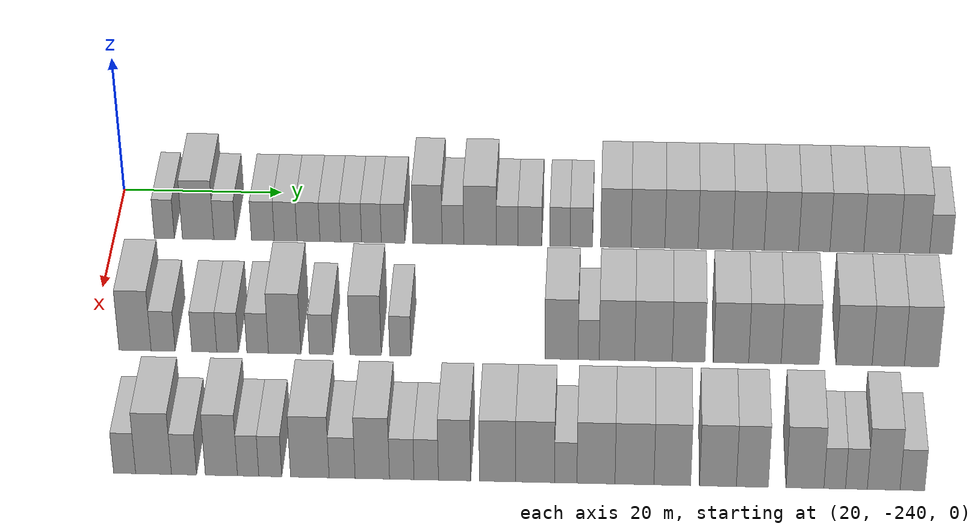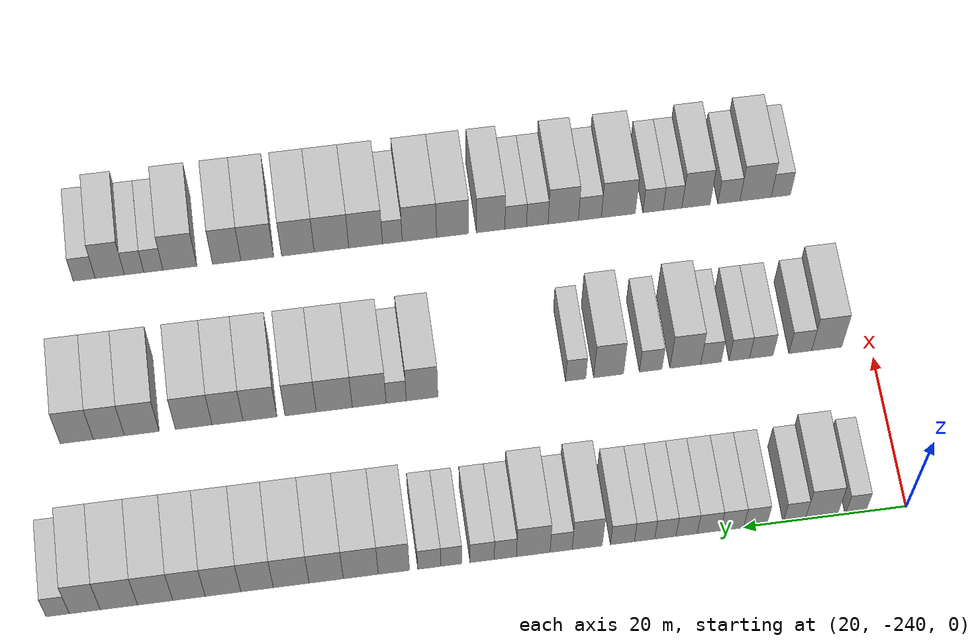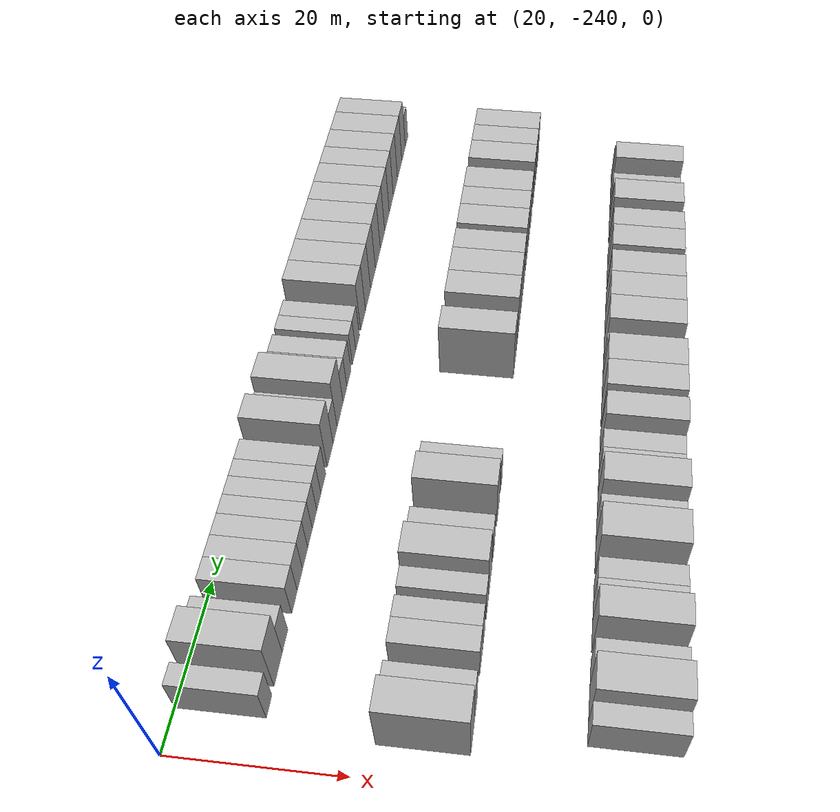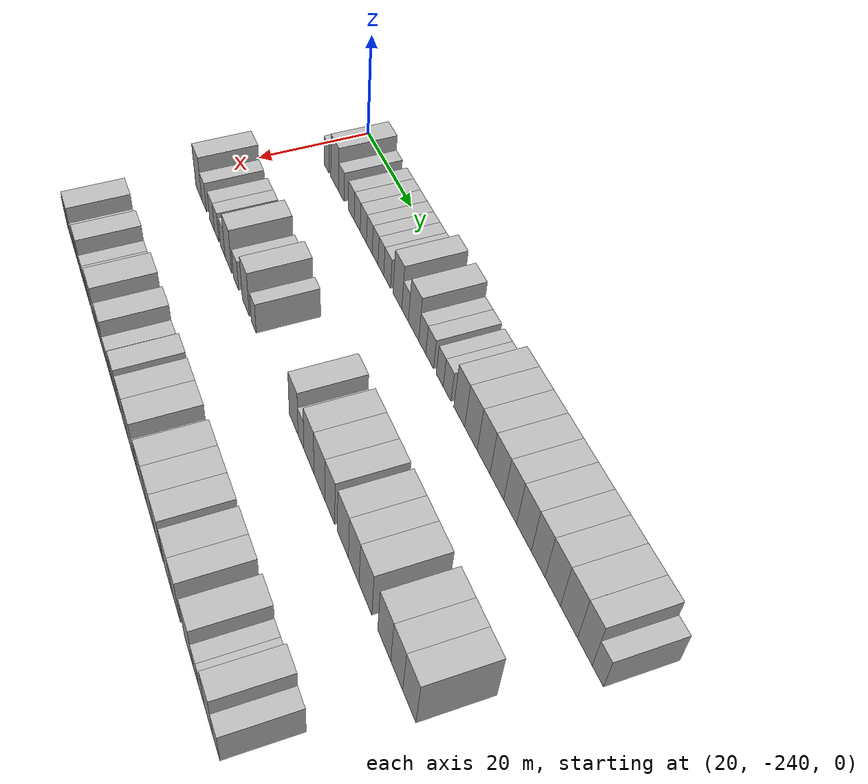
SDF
<sdf version="1.6">
 <world name="default">
  <model name="building_33">
   <static>1</static>
   <pose>25.0000 -233.6881 0 0.000000 0.000000 0.000000</pose>
   <link name="link">
    <pose>0 0 3.00 0 0 0</pose>
    <collision name="collision"><geometry><box><size>10.0000 2.5045 6.0000</size></box></geometry></collision>
    <visual name="visual">
     <cast_shadows>0</cast_shadows>
     <geometry><box><size>10.0000 2.5045 6.0000</size></box></geometry>
     <material>
      <script>
       <uri>model://HANNAS_wall/materials/scripts</uri>
       <uri>model://HANNAS_wall/materials/textures</uri>
       <name>vrc/HANNAS_wall</name>
      </script>
     </material>
    </visual>
   </link>
  </model>
  <model name="building_34">
   <static>1</static>
   <pose>25.0000 -229.4758 0 0.000000 0.000000 0.000000</pose>
   <link name="link">
    <pose>0 0 4.50 0 0 0</pose>
    <collision name="collision"><geometry><box><size>10.0000 3.9200 9.0000</size></box></geometry></collision>
    <visual name="visual">
     <cast_shadows>0</cast_shadows>
     <geometry><box><size>10.0000 3.9200 9.0000</size></box></geometry>
     <material>
      <script>
       <uri>model://HANNAS_wall/materials/scripts</uri>
       <uri>model://HANNAS_wall/materials/textures</uri>
       <name>vrc/HANNAS_wall</name>
      </script>
     </material>
    </visual>
   </link>
  </model>
  <model name="building_35">
   <static>1</static>
   <pose>25.0000 -226.1707 0 0.000000 0.000000 0.000000</pose>
   <link name="link">
    <pose>0 0 3.00 0 0 0</pose>
    <collision name="collision"><geometry><box><size>10.0000 2.6901 6.0000</size></box></geometry></collision>
    <visual name="visual">
     <cast_shadows>0</cast_shadows>
     <geometry><box><size>10.0000 2.6901 6.0000</size></box></geometry>
     <material>
      <script>
       <uri>model://HANNAS_wall/materials/scripts</uri>
       <uri>model://HANNAS_wall/materials/textures</uri>
       <name>vrc/HANNAS_wall</name>
      </script>
     </material>
    </visual>
   </link>
  </model>
  <model name="building_36">
   <static>1</static>
   <pose>25.0000 -221.4055 0 0.000000 0.000000 0.000000</pose>
   <link name="link">
    <pose>0 0 3.00 0 0 0</pose>
    <collision name="collision"><geometry><box><size>10.0000 2.8403 6.0000</size></box></geometry></collision>
    <visual name="visual">
     <cast_shadows>0</cast_shadows>
     <geometry><box><size>10.0000 2.8403 6.0000</size></box></geometry>
     <material>
      <script>
       <uri>model://HANNAS_wall/materials/scripts</uri>
       <uri>model://HANNAS_wall/materials/textures</uri>
       <name>vrc/HANNAS_wall</name>
      </script>
     </material>
    </visual>
   </link>
  </model>
  <model name="building_37">
   <static>1</static>
   <pose>25.0000 -218.5727 0 0.000000 0.000000 0.000000</pose>
   <link name="link">
    <pose>0 0 3.00 0 0 0</pose>
    <collision name="collision"><geometry><box><size>10.0000 2.8253 6.0000</size></box></geometry></collision>
    <visual name="visual">
     <cast_shadows>0</cast_shadows>
     <geometry><box><size>10.0000 2.8253 6.0000</size></box></geometry>
     <material>
      <script>
       <uri>model://HANNAS_wall/materials/scripts</uri>
       <uri>model://HANNAS_wall/materials/textures</uri>
       <name>vrc/HANNAS_wall</name>
      </script>
     </material>
    </visual>
   </link>
  </model>
  <model name="building_38">
   <static>1</static>
   <pose>25.0000 -215.7365 0 0.000000 0.000000 0.000000</pose>
   <link name="link">
    <pose>0 0 3.00 0 0 0</pose>
    <collision name="collision"><geometry><box><size>10.0000 2.8472 6.0000</size></box></geometry></collision>
    <visual name="visual">
     <cast_shadows>0</cast_shadows>
     <geometry><box><size>10.0000 2.8472 6.0000</size></box></geometry>
     <material>
      <script>
       <uri>model://HANNAS_wall/materials/scripts</uri>
       <uri>model://HANNAS_wall/materials/textures</uri>
       <name>vrc/HANNAS_wall</name>
      </script>
     </material>
    </visual>
   </link>
  </model>
  <model name="building_39">
   <static>1</static>
   <pose>25.0000 -213.0201 0 0.000000 0.000000 0.000000</pose>
   <link name="link">
    <pose>0 0 3.00 0 0 0</pose>
    <collision name="collision"><geometry><box><size>10.0000 2.5855 6.0000</size></box></geometry></collision>
    <visual name="visual">
     <cast_shadows>0</cast_shadows>
     <geometry><box><size>10.0000 2.5855 6.0000</size></box></geometry>
     <material>
      <script>
       <uri>model://HANNAS_wall/materials/scripts</uri>
       <uri>model://HANNAS_wall/materials/textures</uri>
       <name>vrc/HANNAS_wall</name>
      </script>
     </material>
    </visual>
   </link>
  </model>
  <model name="building_40">
   <static>1</static>
   <pose>25.0000 -210.4292 0 0.000000 0.000000 0.000000</pose>
   <link name="link">
    <pose>0 0 3.00 0 0 0</pose>
    <collision name="collision"><geometry><box><size>10.0000 2.5962 6.0000</size></box></geometry></collision>
    <visual name="visual">
     <cast_shadows>0</cast_shadows>
     <geometry><box><size>10.0000 2.5962 6.0000</size></box></geometry>
     <material>
      <script>
       <uri>model://HANNAS_wall/materials/scripts</uri>
       <uri>model://HANNAS_wall/materials/textures</uri>
       <name>vrc/HANNAS_wall</name>
      </script>
     </material>
    </visual>
   </link>
  </model>
  <model name="building_41">
   <static>1</static>
   <pose>25.0000 -207.9044 0 0.000000 0.000000 0.000000</pose>
   <link name="link">
    <pose>0 0 3.00 0 0 0</pose>
    <collision name="collision"><geometry><box><size>10.0000 2.4534 6.0000</size></box></geometry></collision>
    <visual name="visual">
     <cast_shadows>0</cast_shadows>
     <geometry><box><size>10.0000 2.4534 6.0000</size></box></geometry>
     <material>
      <script>
       <uri>model://HANNAS_wall/materials/scripts</uri>
       <uri>model://HANNAS_wall/materials/textures</uri>
       <name>vrc/HANNAS_wall</name>
      </script>
     </material>
    </visual>
   </link>
  </model>
  <model name="building_42">
   <static>1</static>
   <pose>25.0000 -205.2205 0 0.000000 0.000000 0.000000</pose>
   <link name="link">
    <pose>0 0 3.00 0 0 0</pose>
    <collision name="collision"><geometry><box><size>10.0000 2.9143 6.0000</size></box></geometry></collision>
    <visual name="visual">
     <cast_shadows>0</cast_shadows>
     <geometry><box><size>10.0000 2.9143 6.0000</size></box></geometry>
     <material>
      <script>
       <uri>model://HANNAS_wall/materials/scripts</uri>
       <uri>model://HANNAS_wall/materials/textures</uri>
       <name>vrc/HANNAS_wall</name>
      </script>
     </material>
    </visual>
   </link>
  </model>
  <model name="building_43">
   <static>1</static>
   <pose>25.0000 -200.9408 0 0.000000 0.000000 0.000000</pose>
   <link name="link">
    <pose>0 0 4.50 0 0 0</pose>
    <collision name="collision"><geometry><box><size>10.0000 3.6453 9.0000</size></box></geometry></collision>
    <visual name="visual">
     <cast_shadows>0</cast_shadows>
     <geometry><box><size>10.0000 3.6453 9.0000</size></box></geometry>
     <material>
      <script>
       <uri>model://HANNAS_wall/materials/scripts</uri>
       <uri>model://HANNAS_wall/materials/textures</uri>
       <name>vrc/HANNAS_wall</name>
      </script>
     </material>
    </visual>
   </link>
  </model>
  <model name="building_44">
   <static>1</static>
   <pose>25.0000 -197.7806 0 0.000000 0.000000 0.000000</pose>
   <link name="link">
    <pose>0 0 3.00 0 0 0</pose>
    <collision name="collision"><geometry><box><size>10.0000 2.6750 6.0000</size></box></geometry></collision>
    <visual name="visual">
     <cast_shadows>0</cast_shadows>
     <geometry><box><size>10.0000 2.6750 6.0000</size></box></geometry>
     <material>
      <script>
       <uri>model://HANNAS_wall/materials/scripts</uri>
       <uri>model://HANNAS_wall/materials/textures</uri>
       <name>vrc/HANNAS_wall</name>
      </script>
     </material>
    </visual>
   </link>
  </model>
  <model name="building_45">
   <static>1</static>
   <pose>25.0000 -194.4155 0 0.000000 0.000000 0.000000</pose>
   <link name="link">
    <pose>0 0 4.50 0 0 0</pose>
    <collision name="collision"><geometry><box><size>10.0000 4.0553 9.0000</size></box></geometry></collision>
    <visual name="visual">
     <cast_shadows>0</cast_shadows>
     <geometry><box><size>10.0000 4.0553 9.0000</size></box></geometry>
     <material>
      <script>
       <uri>model://HANNAS_wall/materials/scripts</uri>
       <uri>model://HANNAS_wall/materials/textures</uri>
       <name>vrc/HANNAS_wall</name>
      </script>
     </material>
    </visual>
   </link>
  </model>
  <model name="building_46">
   <static>1</static>
   <pose>25.0000 -191.0507 0 0.000000 0.000000 0.000000</pose>
   <link name="link">
    <pose>0 0 3.00 0 0 0</pose>
    <collision name="collision"><geometry><box><size>10.0000 2.6742 6.0000</size></box></geometry></collision>
    <visual name="visual">
     <cast_shadows>0</cast_shadows>
     <geometry><box><size>10.0000 2.6742 6.0000</size></box></geometry>
     <material>
      <script>
       <uri>model://HANNAS_wall/materials/scripts</uri>
       <uri>model://HANNAS_wall/materials/textures</uri>
       <name>vrc/HANNAS_wall</name>
      </script>
     </material>
    </visual>
   </link>
  </model>
  <model name="building_47">
   <static>1</static>
   <pose>25.0000 -188.2467 0 0.000000 0.000000 0.000000</pose>
   <link name="link">
    <pose>0 0 3.00 0 0 0</pose>
    <collision name="collision"><geometry><box><size>10.0000 2.9339 6.0000</size></box></geometry></collision>
    <visual name="visual">
     <cast_shadows>0</cast_shadows>
     <geometry><box><size>10.0000 2.9339 6.0000</size></box></geometry>
     <material>
      <script>
       <uri>model://HANNAS_wall/materials/scripts</uri>
       <uri>model://HANNAS_wall/materials/textures</uri>
       <name>vrc/HANNAS_wall</name>
      </script>
     </material>
    </visual>
   </link>
  </model>
  <model name="building_48">
   <static>1</static>
   <pose>25.0000 -184.5239 0 0.000000 0.000000 0.000000</pose>
   <link name="link">
    <pose>0 0 3.00 0 0 0</pose>
    <collision name="collision"><geometry><box><size>10.0000 2.5118 6.0000</size></box></geometry></collision>
    <visual name="visual">
     <cast_shadows>0</cast_shadows>
     <geometry><box><size>10.0000 2.5118 6.0000</size></box></geometry>
     <material>
      <script>
       <uri>model://HANNAS_wall/materials/scripts</uri>
       <uri>model://HANNAS_wall/materials/textures</uri>
       <name>vrc/HANNAS_wall</name>
      </script>
     </material>
    </visual>
   </link>
  </model>
  <model name="building_49">
   <static>1</static>
   <pose>25.0000 -181.8767 0 0.000000 0.000000 0.000000</pose>
   <link name="link">
    <pose>0 0 3.00 0 0 0</pose>
    <collision name="collision"><geometry><box><size>10.0000 2.7826 6.0000</size></box></geometry></collision>
    <visual name="visual">
     <cast_shadows>0</cast_shadows>
     <geometry><box><size>10.0000 2.7826 6.0000</size></box></geometry>
     <material>
      <script>
       <uri>model://HANNAS_wall/materials/scripts</uri>
       <uri>model://HANNAS_wall/materials/textures</uri>
       <name>vrc/HANNAS_wall</name>
      </script>
     </material>
    </visual>
   </link>
  </model>
  <model name="building_50">
   <static>1</static>
   <pose>25.0000 -177.6072 0 0.000000 0.000000 0.000000</pose>
   <link name="link">
    <pose>0 0 4.50 0 0 0</pose>
    <collision name="collision"><geometry><box><size>10.0000 3.7564 9.0000</size></box></geometry></collision>
    <visual name="visual">
     <cast_shadows>0</cast_shadows>
     <geometry><box><size>10.0000 3.7564 9.0000</size></box></geometry>
     <material>
      <script>
       <uri>model://HANNAS_wall/materials/scripts</uri>
       <uri>model://HANNAS_wall/materials/textures</uri>
       <name>vrc/HANNAS_wall</name>
      </script>
     </material>
    </visual>
   </link>
  </model>
  <model name="building_51">
   <static>1</static>
   <pose>25.0000 -173.6328 0 0.000000 0.000000 0.000000</pose>
   <link name="link">
    <pose>0 0 4.50 0 0 0</pose>
    <collision name="collision"><geometry><box><size>10.0000 4.1924 9.0000</size></box></geometry></collision>
    <visual name="visual">
     <cast_shadows>0</cast_shadows>
     <geometry><box><size>10.0000 4.1924 9.0000</size></box></geometry>
     <material>
      <script>
       <uri>model://HANNAS_wall/materials/scripts</uri>
       <uri>model://HANNAS_wall/materials/textures</uri>
       <name>vrc/HANNAS_wall</name>
      </script>
     </material>
    </visual>
   </link>
  </model>
  <model name="building_52">
   <static>1</static>
   <pose>25.0000 -169.4848 0 0.000000 0.000000 0.000000</pose>
   <link name="link">
    <pose>0 0 4.50 0 0 0</pose>
    <collision name="collision"><geometry><box><size>10.0000 4.1036 9.0000</size></box></geometry></collision>
    <visual name="visual">
     <cast_shadows>0</cast_shadows>
     <geometry><box><size>10.0000 4.1036 9.0000</size></box></geometry>
     <material>
      <script>
       <uri>model://HANNAS_wall/materials/scripts</uri>
       <uri>model://HANNAS_wall/materials/textures</uri>
       <name>vrc/HANNAS_wall</name>
      </script>
     </material>
    </visual>
   </link>
  </model>
  <model name="building_53">
   <static>1</static>
   <pose>25.0000 -165.2913 0 0.000000 0.000000 0.000000</pose>
   <link name="link">
    <pose>0 0 4.50 0 0 0</pose>
    <collision name="collision"><geometry><box><size>10.0000 4.2834 9.0000</size></box></geometry></collision>
    <visual name="visual">
     <cast_shadows>0</cast_shadows>
     <geometry><box><size>10.0000 4.2834 9.0000</size></box></geometry>
     <material>
      <script>
       <uri>model://HANNAS_wall/materials/scripts</uri>
       <uri>model://HANNAS_wall/materials/textures</uri>
       <name>vrc/HANNAS_wall</name>
      </script>
     </material>
    </visual>
   </link>
  </model>
  <model name="building_54">
   <static>1</static>
   <pose>25.0000 -161.2082 0 0.000000 0.000000 0.000000</pose>
   <link name="link">
    <pose>0 0 4.50 0 0 0</pose>
    <collision name="collision"><geometry><box><size>10.0000 3.8828 9.0000</size></box></geometry></collision>
    <visual name="visual">
     <cast_shadows>0</cast_shadows>
     <geometry><box><size>10.0000 3.8828 9.0000</size></box></geometry>
     <material>
      <script>
       <uri>model://HANNAS_wall/materials/scripts</uri>
       <uri>model://HANNAS_wall/materials/textures</uri>
       <name>vrc/HANNAS_wall</name>
      </script>
     </material>
    </visual>
   </link>
  </model>
  <model name="building_55">
   <static>1</static>
   <pose>25.0000 -157.1422 0 0.000000 0.000000 0.000000</pose>
   <link name="link">
    <pose>0 0 4.50 0 0 0</pose>
    <collision name="collision"><geometry><box><size>10.0000 4.2492 9.0000</size></box></geometry></collision>
    <visual name="visual">
     <cast_shadows>0</cast_shadows>
     <geometry><box><size>10.0000 4.2492 9.0000</size></box></geometry>
     <material>
      <script>
       <uri>model://HANNAS_wall/materials/scripts</uri>
       <uri>model://HANNAS_wall/materials/textures</uri>
       <name>vrc/HANNAS_wall</name>
      </script>
     </material>
    </visual>
   </link>
  </model>
  <model name="building_56">
   <static>1</static>
   <pose>25.0000 -153.0838 0 0.000000 0.000000 0.000000</pose>
   <link name="link">
    <pose>0 0 4.50 0 0 0</pose>
    <collision name="collision"><geometry><box><size>10.0000 3.8676 9.0000</size></box></geometry></collision>
    <visual name="visual">
     <cast_shadows>0</cast_shadows>
     <geometry><box><size>10.0000 3.8676 9.0000</size></box></geometry>
     <material>
      <script>
       <uri>model://HANNAS_wall/materials/scripts</uri>
       <uri>model://HANNAS_wall/materials/textures</uri>
       <name>vrc/HANNAS_wall</name>
      </script>
     </material>
    </visual>
   </link>
  </model>
  <model name="building_57">
   <static>1</static>
   <pose>25.0000 -149.0592 0 0.000000 0.000000 0.000000</pose>
   <link name="link">
    <pose>0 0 4.50 0 0 0</pose>
    <collision name="collision"><geometry><box><size>10.0000 4.1815 9.0000</size></box></geometry></collision>
    <visual name="visual">
     <cast_shadows>0</cast_shadows>
     <geometry><box><size>10.0000 4.1815 9.0000</size></box></geometry>
     <material>
      <script>
       <uri>model://HANNAS_wall/materials/scripts</uri>
       <uri>model://HANNAS_wall/materials/textures</uri>
       <name>vrc/HANNAS_wall</name>
      </script>
     </material>
    </visual>
   </link>
  </model>
  <model name="building_58">
   <static>1</static>
   <pose>25.0000 -144.7531 0 0.000000 0.000000 0.000000</pose>
   <link name="link">
    <pose>0 0 4.50 0 0 0</pose>
    <collision name="collision"><geometry><box><size>10.0000 4.4307 9.0000</size></box></geometry></collision>
    <visual name="visual">
     <cast_shadows>0</cast_shadows>
     <geometry><box><size>10.0000 4.4307 9.0000</size></box></geometry>
     <material>
      <script>
       <uri>model://HANNAS_wall/materials/scripts</uri>
       <uri>model://HANNAS_wall/materials/textures</uri>
       <name>vrc/HANNAS_wall</name>
      </script>
     </material>
    </visual>
   </link>
  </model>
  <model name="building_59">
   <static>1</static>
   <pose>25.0000 -140.6988 0 0.000000 0.000000 0.000000</pose>
   <link name="link">
    <pose>0 0 4.50 0 0 0</pose>
    <collision name="collision"><geometry><box><size>10.0000 3.6778 9.0000</size></box></geometry></collision>
    <visual name="visual">
     <cast_shadows>0</cast_shadows>
     <geometry><box><size>10.0000 3.6778 9.0000</size></box></geometry>
     <material>
      <script>
       <uri>model://HANNAS_wall/materials/scripts</uri>
       <uri>model://HANNAS_wall/materials/textures</uri>
       <name>vrc/HANNAS_wall</name>
      </script>
     </material>
    </visual>
   </link>
  </model>
  <model name="building_60">
   <static>1</static>
   <pose>25.0000 -137.4842 0 0.000000 0.000000 0.000000</pose>
   <link name="link">
    <pose>0 0 3.00 0 0 0</pose>
    <collision name="collision"><geometry><box><size>10.0000 2.7513 6.0000</size></box></geometry></collision>
    <visual name="visual">
     <cast_shadows>0</cast_shadows>
     <geometry><box><size>10.0000 2.7513 6.0000</size></box></geometry>
     <material>
      <script>
       <uri>model://HANNAS_wall/materials/scripts</uri>
       <uri>model://HANNAS_wall/materials/textures</uri>
       <name>vrc/HANNAS_wall</name>
      </script>
     </material>
    </visual>
   </link>
  </model>
  <model name="building_216">
   <static>1</static>
   <pose>47.0000 -234.4983 0 0.000000 0.000000 0.000000</pose>
   <link name="link">
    <pose>0 0 4.50 0 0 0</pose>
    <collision name="collision"><geometry><box><size>10.0000 3.8227 9.0000</size></box></geometry></collision>
    <visual name="visual">
     <cast_shadows>0</cast_shadows>
     <geometry><box><size>10.0000 3.8227 9.0000</size></box></geometry>
     <material>
      <script>
       <uri>model://HANNAS_wall/materials/scripts</uri>
       <uri>model://HANNAS_wall/materials/textures</uri>
       <name>vrc/HANNAS_wall</name>
      </script>
     </material>
    </visual>
   </link>
  </model>
  <model name="building_217">
   <static>1</static>
   <pose>47.0000 -231.1557 0 0.000000 0.000000 0.000000</pose>
   <link name="link">
    <pose>0 0 3.00 0 0 0</pose>
    <collision name="collision"><geometry><box><size>10.0000 2.8625 6.0000</size></box></geometry></collision>
    <visual name="visual">
     <cast_shadows>0</cast_shadows>
     <geometry><box><size>10.0000 2.8625 6.0000</size></box></geometry>
     <material>
      <script>
       <uri>model://HANNAS_wall/materials/scripts</uri>
       <uri>model://HANNAS_wall/materials/textures</uri>
       <name>vrc/HANNAS_wall</name>
      </script>
     </material>
    </visual>
   </link>
  </model>
  <model name="building_218">
   <static>1</static>
   <pose>47.0000 -226.2382 0 0.000000 0.000000 0.000000</pose>
   <link name="link">
    <pose>0 0 3.00 0 0 0</pose>
    <collision name="collision"><geometry><box><size>10.0000 2.9726 6.0000</size></box></geometry></collision>
    <visual name="visual">
     <cast_shadows>0</cast_shadows>
     <geometry><box><size>10.0000 2.9726 6.0000</size></box></geometry>
     <material>
      <script>
       <uri>model://HANNAS_wall/materials/scripts</uri>
       <uri>model://HANNAS_wall/materials/textures</uri>
       <name>vrc/HANNAS_wall</name>
      </script>
     </material>
    </visual>
   </link>
  </model>
  <model name="building_219">
   <static>1</static>
   <pose>47.0000 -223.4603 0 0.000000 0.000000 0.000000</pose>
   <link name="link">
    <pose>0 0 3.00 0 0 0</pose>
    <collision name="collision"><geometry><box><size>10.0000 2.5832 6.0000</size></box></geometry></collision>
    <visual name="visual">
     <cast_shadows>0</cast_shadows>
     <geometry><box><size>10.0000 2.5832 6.0000</size></box></geometry>
     <material>
      <script>
       <uri>model://HANNAS_wall/materials/scripts</uri>
       <uri>model://HANNAS_wall/materials/textures</uri>
       <name>vrc/HANNAS_wall</name>
      </script>
     </material>
    </visual>
   </link>
  </model>
  <model name="building_220">
   <static>1</static>
   <pose>47.0000 -219.8809 0 0.000000 0.000000 0.000000</pose>
   <link name="link">
    <pose>0 0 3.00 0 0 0</pose>
    <collision name="collision"><geometry><box><size>10.0000 2.5757 6.0000</size></box></geometry></collision>
    <visual name="visual">
     <cast_shadows>0</cast_shadows>
     <geometry><box><size>10.0000 2.5757 6.0000</size></box></geometry>
     <material>
      <script>
       <uri>model://HANNAS_wall/materials/scripts</uri>
       <uri>model://HANNAS_wall/materials/textures</uri>
       <name>vrc/HANNAS_wall</name>
      </script>
     </material>
    </visual>
   </link>
  </model>
  <model name="building_221">
   <static>1</static>
   <pose>47.0000 -216.6588 0 0.000000 0.000000 0.000000</pose>
   <link name="link">
    <pose>0 0 4.50 0 0 0</pose>
    <collision name="collision"><geometry><box><size>10.0000 3.8686 9.0000</size></box></geometry></collision>
    <visual name="visual">
     <cast_shadows>0</cast_shadows>
     <geometry><box><size>10.0000 3.8686 9.0000</size></box></geometry>
     <material>
      <script>
       <uri>model://HANNAS_wall/materials/scripts</uri>
       <uri>model://HANNAS_wall/materials/textures</uri>
       <name>vrc/HANNAS_wall</name>
      </script>
     </material>
    </visual>
   </link>
  </model>
  <model name="building_222">
   <static>1</static>
   <pose>47.0000 -212.3108 0 0.000000 0.000000 0.000000</pose>
   <link name="link">
    <pose>0 0 3.00 0 0 0</pose>
    <collision name="collision"><geometry><box><size>10.0000 2.8274 6.0000</size></box></geometry></collision>
    <visual name="visual">
     <cast_shadows>0</cast_shadows>
     <geometry><box><size>10.0000 2.8274 6.0000</size></box></geometry>
     <material>
      <script>
       <uri>model://HANNAS_wall/materials/scripts</uri>
       <uri>model://HANNAS_wall/materials/textures</uri>
       <name>vrc/HANNAS_wall</name>
      </script>
     </material>
    </visual>
   </link>
  </model>
  <model name="building_223">
   <static>1</static>
   <pose>47.0000 -207.0348 0 0.000000 0.000000 0.000000</pose>
   <link name="link">
    <pose>0 0 4.50 0 0 0</pose>
    <collision name="collision"><geometry><box><size>10.0000 3.7246 9.0000</size></box></geometry></collision>
    <visual name="visual">
     <cast_shadows>0</cast_shadows>
     <geometry><box><size>10.0000 3.7246 9.0000</size></box></geometry>
     <material>
      <script>
       <uri>model://HANNAS_wall/materials/scripts</uri>
       <uri>model://HANNAS_wall/materials/textures</uri>
       <name>vrc/HANNAS_wall</name>
      </script>
     </material>
    </visual>
   </link>
  </model>
  <model name="building_224">
   <static>1</static>
   <pose>47.0000 -202.9093 0 0.000000 0.000000 0.000000</pose>
   <link name="link">
    <pose>0 0 3.00 0 0 0</pose>
    <collision name="collision"><geometry><box><size>10.0000 2.5264 6.0000</size></box></geometry></collision>
    <visual name="visual">
     <cast_shadows>0</cast_shadows>
     <geometry><box><size>10.0000 2.5264 6.0000</size></box></geometry>
     <material>
      <script>
       <uri>model://HANNAS_wall/materials/scripts</uri>
       <uri>model://HANNAS_wall/materials/textures</uri>
       <name>vrc/HANNAS_wall</name>
      </script>
     </material>
    </visual>
   </link>
  </model>
  <model name="building_225">
   <static>1</static>
   <pose>47.0000 -183.7720 0 0.000000 0.000000 0.000000</pose>
   <link name="link">
    <pose>0 0 4.50 0 0 0</pose>
    <collision name="collision"><geometry><box><size>10.0000 3.9160 9.0000</size></box></geometry></collision>
    <visual name="visual">
     <cast_shadows>0</cast_shadows>
     <geometry><box><size>10.0000 3.9160 9.0000</size></box></geometry>
     <material>
      <script>
       <uri>model://HANNAS_wall/materials/scripts</uri>
       <uri>model://HANNAS_wall/materials/textures</uri>
       <name>vrc/HANNAS_wall</name>
      </script>
     </material>
    </visual>
   </link>
  </model>
  <model name="building_226">
   <static>1</static>
   <pose>47.0000 -180.5611 0 0.000000 0.000000 0.000000</pose>
   <link name="link">
    <pose>0 0 3.00 0 0 0</pose>
    <collision name="collision"><geometry><box><size>10.0000 2.5058 6.0000</size></box></geometry></collision>
    <visual name="visual">
     <cast_shadows>0</cast_shadows>
     <geometry><box><size>10.0000 2.5058 6.0000</size></box></geometry>
     <material>
      <script>
       <uri>model://HANNAS_wall/materials/scripts</uri>
       <uri>model://HANNAS_wall/materials/textures</uri>
       <name>vrc/HANNAS_wall</name>
      </script>
     </material>
    </visual>
   </link>
  </model>
  <model name="building_227">
   <static>1</static>
   <pose>47.0000 -177.2131 0 0.000000 0.000000 0.000000</pose>
   <link name="link">
    <pose>0 0 4.50 0 0 0</pose>
    <collision name="collision"><geometry><box><size>10.0000 4.1901 9.0000</size></box></geometry></collision>
    <visual name="visual">
     <cast_shadows>0</cast_shadows>
     <geometry><box><size>10.0000 4.1901 9.0000</size></box></geometry>
     <material>
      <script>
       <uri>model://HANNAS_wall/materials/scripts</uri>
       <uri>model://HANNAS_wall/materials/textures</uri>
       <name>vrc/HANNAS_wall</name>
      </script>
     </material>
    </visual>
   </link>
  </model>
  <model name="building_228">
   <static>1</static>
   <pose>47.0000 -172.8973 0 0.000000 0.000000 0.000000</pose>
   <link name="link">
    <pose>0 0 4.50 0 0 0</pose>
    <collision name="collision"><geometry><box><size>10.0000 4.4416 9.0000</size></box></geometry></collision>
    <visual name="visual">
     <cast_shadows>0</cast_shadows>
     <geometry><box><size>10.0000 4.4416 9.0000</size></box></geometry>
     <material>
      <script>
       <uri>model://HANNAS_wall/materials/scripts</uri>
       <uri>model://HANNAS_wall/materials/textures</uri>
       <name>vrc/HANNAS_wall</name>
      </script>
     </material>
    </visual>
   </link>
  </model>
  <model name="building_229">
   <static>1</static>
   <pose>47.0000 -168.7396 0 0.000000 0.000000 0.000000</pose>
   <link name="link">
    <pose>0 0 4.50 0 0 0</pose>
    <collision name="collision"><geometry><box><size>10.0000 3.8739 9.0000</size></box></geometry></collision>
    <visual name="visual">
     <cast_shadows>0</cast_shadows>
     <geometry><box><size>10.0000 3.8739 9.0000</size></box></geometry>
     <material>
      <script>
       <uri>model://HANNAS_wall/materials/scripts</uri>
       <uri>model://HANNAS_wall/materials/textures</uri>
       <name>vrc/HANNAS_wall</name>
      </script>
     </material>
    </visual>
   </link>
  </model>
  <model name="building_230">
   <static>1</static>
   <pose>47.0000 -163.7154 0 0.000000 0.000000 0.000000</pose>
   <link name="link">
    <pose>0 0 4.50 0 0 0</pose>
    <collision name="collision"><geometry><box><size>10.0000 4.1745 9.0000</size></box></geometry></collision>
    <visual name="visual">
     <cast_shadows>0</cast_shadows>
     <geometry><box><size>10.0000 4.1745 9.0000</size></box></geometry>
     <material>
      <script>
       <uri>model://HANNAS_wall/materials/scripts</uri>
       <uri>model://HANNAS_wall/materials/textures</uri>
       <name>vrc/HANNAS_wall</name>
      </script>
     </material>
    </visual>
   </link>
  </model>
  <model name="building_231">
   <static>1</static>
   <pose>47.0000 -159.7131 0 0.000000 0.000000 0.000000</pose>
   <link name="link">
    <pose>0 0 4.50 0 0 0</pose>
    <collision name="collision"><geometry><box><size>10.0000 3.8301 9.0000</size></box></geometry></collision>
    <visual name="visual">
     <cast_shadows>0</cast_shadows>
     <geometry><box><size>10.0000 3.8301 9.0000</size></box></geometry>
     <material>
      <script>
       <uri>model://HANNAS_wall/materials/scripts</uri>
       <uri>model://HANNAS_wall/materials/textures</uri>
       <name>vrc/HANNAS_wall</name>
      </script>
     </material>
    </visual>
   </link>
  </model>
  <model name="building_232">
   <static>1</static>
   <pose>47.0000 -155.5542 0 0.000000 0.000000 0.000000</pose>
   <link name="link">
    <pose>0 0 4.50 0 0 0</pose>
    <collision name="collision"><geometry><box><size>10.0000 4.4875 9.0000</size></box></geometry></collision>
    <visual name="visual">
     <cast_shadows>0</cast_shadows>
     <geometry><box><size>10.0000 4.4875 9.0000</size></box></geometry>
     <material>
      <script>
       <uri>model://HANNAS_wall/materials/scripts</uri>
       <uri>model://HANNAS_wall/materials/textures</uri>
       <name>vrc/HANNAS_wall</name>
      </script>
     </material>
    </visual>
   </link>
  </model>
  <model name="building_233">
   <static>1</static>
   <pose>47.0000 -149.1804 0 0.000000 0.000000 0.000000</pose>
   <link name="link">
    <pose>0 0 4.50 0 0 0</pose>
    <collision name="collision"><geometry><box><size>10.0000 4.2603 9.0000</size></box></geometry></collision>
    <visual name="visual">
     <cast_shadows>0</cast_shadows>
     <geometry><box><size>10.0000 4.2603 9.0000</size></box></geometry>
     <material>
      <script>
       <uri>model://HANNAS_wall/materials/scripts</uri>
       <uri>model://HANNAS_wall/materials/textures</uri>
       <name>vrc/HANNAS_wall</name>
      </script>
     </material>
    </visual>
   </link>
  </model>
  <model name="building_234">
   <static>1</static>
   <pose>47.0000 -145.1501 0 0.000000 0.000000 0.000000</pose>
   <link name="link">
    <pose>0 0 4.50 0 0 0</pose>
    <collision name="collision"><geometry><box><size>10.0000 3.8003 9.0000</size></box></geometry></collision>
    <visual name="visual">
     <cast_shadows>0</cast_shadows>
     <geometry><box><size>10.0000 3.8003 9.0000</size></box></geometry>
     <material>
      <script>
       <uri>model://HANNAS_wall/materials/scripts</uri>
       <uri>model://HANNAS_wall/materials/textures</uri>
       <name>vrc/HANNAS_wall</name>
      </script>
     </material>
    </visual>
   </link>
  </model>
  <model name="building_235">
   <static>1</static>
   <pose>47.0000 -141.2225 0 0.000000 0.000000 0.000000</pose>
   <link name="link">
    <pose>0 0 4.50 0 0 0</pose>
    <collision name="collision"><geometry><box><size>10.0000 4.0547 9.0000</size></box></geometry></collision>
    <visual name="visual">
     <cast_shadows>0</cast_shadows>
     <geometry><box><size>10.0000 4.0547 9.0000</size></box></geometry>
     <material>
      <script>
       <uri>model://HANNAS_wall/materials/scripts</uri>
       <uri>model://HANNAS_wall/materials/textures</uri>
       <name>vrc/HANNAS_wall</name>
      </script>
     </material>
    </visual>
   </link>
  </model>
  <model name="building_396">
   <static>1</static>
   <pose>69.0000 -232.8508 0 0.000000 0.000000 0.000000</pose>
   <link name="link">
    <pose>0 0 3.00 0 0 0</pose>
    <collision name="collision"><geometry><box><size>10.0000 2.5065 6.0000</size></box></geometry></collision>
    <visual name="visual">
     <cast_shadows>0</cast_shadows>
     <geometry><box><size>10.0000 2.5065 6.0000</size></box></geometry>
     <material>
      <script>
       <uri>model://HANNAS_wall/materials/scripts</uri>
       <uri>model://HANNAS_wall/materials/textures</uri>
       <name>vrc/HANNAS_wall</name>
      </script>
     </material>
    </visual>
   </link>
  </model>
  <model name="building_397">
   <static>1</static>
   <pose>69.0000 -229.5546 0 0.000000 0.000000 0.000000</pose>
   <link name="link">
    <pose>0 0 4.50 0 0 0</pose>
    <collision name="collision"><geometry><box><size>10.0000 4.0859 9.0000</size></box></geometry></collision>
    <visual name="visual">
     <cast_shadows>0</cast_shadows>
     <geometry><box><size>10.0000 4.0859 9.0000</size></box></geometry>
     <material>
      <script>
       <uri>model://HANNAS_wall/materials/scripts</uri>
       <uri>model://HANNAS_wall/materials/textures</uri>
       <name>vrc/HANNAS_wall</name>
      </script>
     </material>
    </visual>
   </link>
  </model>
  <model name="building_398">
   <static>1</static>
   <pose>69.0000 -226.0849 0 0.000000 0.000000 0.000000</pose>
   <link name="link">
    <pose>0 0 3.00 0 0 0</pose>
    <collision name="collision"><geometry><box><size>10.0000 2.8536 6.0000</size></box></geometry></collision>
    <visual name="visual">
     <cast_shadows>0</cast_shadows>
     <geometry><box><size>10.0000 2.8536 6.0000</size></box></geometry>
     <material>
      <script>
       <uri>model://HANNAS_wall/materials/scripts</uri>
       <uri>model://HANNAS_wall/materials/textures</uri>
       <name>vrc/HANNAS_wall</name>
      </script>
     </material>
    </visual>
   </link>
  </model>
  <model name="building_399">
   <static>1</static>
   <pose>69.0000 -221.8293 0 0.000000 0.000000 0.000000</pose>
   <link name="link">
    <pose>0 0 4.50 0 0 0</pose>
    <collision name="collision"><geometry><box><size>10.0000 3.6575 9.0000</size></box></geometry></collision>
    <visual name="visual">
     <cast_shadows>0</cast_shadows>
     <geometry><box><size>10.0000 3.6575 9.0000</size></box></geometry>
     <material>
      <script>
       <uri>model://HANNAS_wall/materials/scripts</uri>
       <uri>model://HANNAS_wall/materials/textures</uri>
       <name>vrc/HANNAS_wall</name>
      </script>
     </material>
    </visual>
   </link>
  </model>
  <model name="building_400">
   <static>1</static>
   <pose>69.0000 -218.7862 0 0.000000 0.000000 0.000000</pose>
   <link name="link">
    <pose>0 0 3.00 0 0 0</pose>
    <collision name="collision"><geometry><box><size>10.0000 2.4286 6.0000</size></box></geometry></collision>
    <visual name="visual">
     <cast_shadows>0</cast_shadows>
     <geometry><box><size>10.0000 2.4286 6.0000</size></box></geometry>
     <material>
      <script>
       <uri>model://HANNAS_wall/materials/scripts</uri>
       <uri>model://HANNAS_wall/materials/textures</uri>
       <name>vrc/HANNAS_wall</name>
      </script>
     </material>
    </visual>
   </link>
  </model>
  <model name="building_401">
   <static>1</static>
   <pose>69.0000 -216.2668 0 0.000000 0.000000 0.000000</pose>
   <link name="link">
    <pose>0 0 3.00 0 0 0</pose>
    <collision name="collision"><geometry><box><size>10.0000 2.6103 6.0000</size></box></geometry></collision>
    <visual name="visual">
     <cast_shadows>0</cast_shadows>
     <geometry><box><size>10.0000 2.6103 6.0000</size></box></geometry>
     <material>
      <script>
       <uri>model://HANNAS_wall/materials/scripts</uri>
       <uri>model://HANNAS_wall/materials/textures</uri>
       <name>vrc/HANNAS_wall</name>
      </script>
     </material>
    </visual>
   </link>
  </model>
  <model name="building_402">
   <static>1</static>
   <pose>69.0000 -211.7713 0 0.000000 0.000000 0.000000</pose>
   <link name="link">
    <pose>0 0 4.50 0 0 0</pose>
    <collision name="collision"><geometry><box><size>10.0000 4.3805 9.0000</size></box></geometry></collision>
    <visual name="visual">
     <cast_shadows>0</cast_shadows>
     <geometry><box><size>10.0000 4.3805 9.0000</size></box></geometry>
     <material>
      <script>
       <uri>model://HANNAS_wall/materials/scripts</uri>
       <uri>model://HANNAS_wall/materials/textures</uri>
       <name>vrc/HANNAS_wall</name>
      </script>
     </material>
    </visual>
   </link>
  </model>
  <model name="building_403">
   <static>1</static>
   <pose>69.0000 -208.1047 0 0.000000 0.000000 0.000000</pose>
   <link name="link">
    <pose>0 0 3.00 0 0 0</pose>
    <collision name="collision"><geometry><box><size>10.0000 2.9529 6.0000</size></box></geometry></collision>
    <visual name="visual">
     <cast_shadows>0</cast_shadows>
     <geometry><box><size>10.0000 2.9529 6.0000</size></box></geometry>
     <material>
      <script>
       <uri>model://HANNAS_wall/materials/scripts</uri>
       <uri>model://HANNAS_wall/materials/textures</uri>
       <name>vrc/HANNAS_wall</name>
      </script>
     </material>
    </visual>
   </link>
  </model>
  <model name="building_404">
   <static>1</static>
   <pose>69.0000 -204.6749 0 0.000000 0.000000 0.000000</pose>
   <link name="link">
    <pose>0 0 4.50 0 0 0</pose>
    <collision name="collision"><geometry><box><size>10.0000 3.9067 9.0000</size></box></geometry></collision>
    <visual name="visual">
     <cast_shadows>0</cast_shadows>
     <geometry><box><size>10.0000 3.9067 9.0000</size></box></geometry>
     <material>
      <script>
       <uri>model://HANNAS_wall/materials/scripts</uri>
       <uri>model://HANNAS_wall/materials/textures</uri>
       <name>vrc/HANNAS_wall</name>
      </script>
     </material>
    </visual>
   </link>
  </model>
  <model name="building_405">
   <static>1</static>
   <pose>69.0000 -201.3307 0 0.000000 0.000000 0.000000</pose>
   <link name="link">
    <pose>0 0 3.00 0 0 0</pose>
    <collision name="collision"><geometry><box><size>10.0000 2.7817 6.0000</size></box></geometry></collision>
    <visual name="visual">
     <cast_shadows>0</cast_shadows>
     <geometry><box><size>10.0000 2.7817 6.0000</size></box></geometry>
     <material>
      <script>
       <uri>model://HANNAS_wall/materials/scripts</uri>
       <uri>model://HANNAS_wall/materials/textures</uri>
       <name>vrc/HANNAS_wall</name>
      </script>
     </material>
    </visual>
   </link>
  </model>
  <model name="building_406">
   <static>1</static>
   <pose>69.0000 -198.5541 0 0.000000 0.000000 0.000000</pose>
   <link name="link">
    <pose>0 0 3.00 0 0 0</pose>
    <collision name="collision"><geometry><box><size>10.0000 2.7715 6.0000</size></box></geometry></collision>
    <visual name="visual">
     <cast_shadows>0</cast_shadows>
     <geometry><box><size>10.0000 2.7715 6.0000</size></box></geometry>
     <material>
      <script>
       <uri>model://HANNAS_wall/materials/scripts</uri>
       <uri>model://HANNAS_wall/materials/textures</uri>
       <name>vrc/HANNAS_wall</name>
      </script>
     </material>
    </visual>
   </link>
  </model>
  <model name="building_407">
   <static>1</static>
   <pose>69.0000 -195.3425 0 0.000000 0.000000 0.000000</pose>
   <link name="link">
    <pose>0 0 4.50 0 0 0</pose>
    <collision name="collision"><geometry><box><size>10.0000 3.6515 9.0000</size></box></geometry></collision>
    <visual name="visual">
     <cast_shadows>0</cast_shadows>
     <geometry><box><size>10.0000 3.6515 9.0000</size></box></geometry>
     <material>
      <script>
       <uri>model://HANNAS_wall/materials/scripts</uri>
       <uri>model://HANNAS_wall/materials/textures</uri>
       <name>vrc/HANNAS_wall</name>
      </script>
     </material>
    </visual>
   </link>
  </model>
  <model name="building_408">
   <static>1</static>
   <pose>69.0000 -190.4604 0 0.000000 0.000000 0.000000</pose>
   <link name="link">
    <pose>0 0 4.50 0 0 0</pose>
    <collision name="collision"><geometry><box><size>10.0000 4.1127 9.0000</size></box></geometry></collision>
    <visual name="visual">
     <cast_shadows>0</cast_shadows>
     <geometry><box><size>10.0000 4.1127 9.0000</size></box></geometry>
     <material>
      <script>
       <uri>model://HANNAS_wall/materials/scripts</uri>
       <uri>model://HANNAS_wall/materials/textures</uri>
       <name>vrc/HANNAS_wall</name>
      </script>
     </material>
    </visual>
   </link>
  </model>
  <model name="building_409">
   <static>1</static>
   <pose>69.0000 -186.2047 0 0.000000 0.000000 0.000000</pose>
   <link name="link">
    <pose>0 0 4.50 0 0 0</pose>
    <collision name="collision"><geometry><box><size>10.0000 4.3988 9.0000</size></box></geometry></collision>
    <visual name="visual">
     <cast_shadows>0</cast_shadows>
     <geometry><box><size>10.0000 4.3988 9.0000</size></box></geometry>
     <material>
      <script>
       <uri>model://HANNAS_wall/materials/scripts</uri>
       <uri>model://HANNAS_wall/materials/textures</uri>
       <name>vrc/HANNAS_wall</name>
      </script>
     </material>
    </visual>
   </link>
  </model>
  <model name="building_410">
   <static>1</static>
   <pose>69.0000 -182.7433 0 0.000000 0.000000 0.000000</pose>
   <link name="link">
    <pose>0 0 3.00 0 0 0</pose>
    <collision name="collision"><geometry><box><size>10.0000 2.5239 6.0000</size></box></geometry></collision>
    <visual name="visual">
     <cast_shadows>0</cast_shadows>
     <geometry><box><size>10.0000 2.5239 6.0000</size></box></geometry>
     <material>
      <script>
       <uri>model://HANNAS_wall/materials/scripts</uri>
       <uri>model://HANNAS_wall/materials/textures</uri>
       <name>vrc/HANNAS_wall</name>
      </script>
     </material>
    </visual>
   </link>
  </model>
  <model name="building_411">
   <static>1</static>
   <pose>69.0000 -179.3320 0 0.000000 0.000000 0.000000</pose>
   <link name="link">
    <pose>0 0 4.50 0 0 0</pose>
    <collision name="collision"><geometry><box><size>10.0000 4.2988 9.0000</size></box></geometry></collision>
    <visual name="visual">
     <cast_shadows>0</cast_shadows>
     <geometry><box><size>10.0000 4.2988 9.0000</size></box></geometry>
     <material>
      <script>
       <uri>model://HANNAS_wall/materials/scripts</uri>
       <uri>model://HANNAS_wall/materials/textures</uri>
       <name>vrc/HANNAS_wall</name>
      </script>
     </material>
    </visual>
   </link>
  </model>
  <model name="building_412">
   <static>1</static>
   <pose>69.0000 -174.9816 0 0.000000 0.000000 0.000000</pose>
   <link name="link">
    <pose>0 0 4.50 0 0 0</pose>
    <collision name="collision"><geometry><box><size>10.0000 4.4019 9.0000</size></box></geometry></collision>
    <visual name="visual">
     <cast_shadows>0</cast_shadows>
     <geometry><box><size>10.0000 4.4019 9.0000</size></box></geometry>
     <material>
      <script>
       <uri>model://HANNAS_wall/materials/scripts</uri>
       <uri>model://HANNAS_wall/materials/textures</uri>
       <name>vrc/HANNAS_wall</name>
      </script>
     </material>
    </visual>
   </link>
  </model>
  <model name="building_413">
   <static>1</static>
   <pose>69.0000 -170.7043 0 0.000000 0.000000 0.000000</pose>
   <link name="link">
    <pose>0 0 4.50 0 0 0</pose>
    <collision name="collision"><geometry><box><size>10.0000 4.1527 9.0000</size></box></geometry></collision>
    <visual name="visual">
     <cast_shadows>0</cast_shadows>
     <geometry><box><size>10.0000 4.1527 9.0000</size></box></geometry>
     <material>
      <script>
       <uri>model://HANNAS_wall/materials/scripts</uri>
       <uri>model://HANNAS_wall/materials/textures</uri>
       <name>vrc/HANNAS_wall</name>
      </script>
     </material>
    </visual>
   </link>
  </model>
  <model name="building_414">
   <static>1</static>
   <pose>69.0000 -165.5464 0 0.000000 0.000000 0.000000</pose>
   <link name="link">
    <pose>0 0 4.50 0 0 0</pose>
    <collision name="collision"><geometry><box><size>10.0000 4.1631 9.0000</size></box></geometry></collision>
    <visual name="visual">
     <cast_shadows>0</cast_shadows>
     <geometry><box><size>10.0000 4.1631 9.0000</size></box></geometry>
     <material>
      <script>
       <uri>model://HANNAS_wall/materials/scripts</uri>
       <uri>model://HANNAS_wall/materials/textures</uri>
       <name>vrc/HANNAS_wall</name>
      </script>
     </material>
    </visual>
   </link>
  </model>
  <model name="building_415">
   <static>1</static>
   <pose>69.0000 -161.6640 0 0.000000 0.000000 0.000000</pose>
   <link name="link">
    <pose>0 0 4.50 0 0 0</pose>
    <collision name="collision"><geometry><box><size>10.0000 3.6018 9.0000</size></box></geometry></collision>
    <visual name="visual">
     <cast_shadows>0</cast_shadows>
     <geometry><box><size>10.0000 3.6018 9.0000</size></box></geometry>
     <material>
      <script>
       <uri>model://HANNAS_wall/materials/scripts</uri>
       <uri>model://HANNAS_wall/materials/textures</uri>
       <name>vrc/HANNAS_wall</name>
      </script>
     </material>
    </visual>
   </link>
  </model>
  <model name="building_416">
   <static>1</static>
   <pose>69.0000 -155.7259 0 0.000000 0.000000 0.000000</pose>
   <link name="link">
    <pose>0 0 4.50 0 0 0</pose>
    <collision name="collision"><geometry><box><size>10.0000 4.2743 9.0000</size></box></geometry></collision>
    <visual name="visual">
     <cast_shadows>0</cast_shadows>
     <geometry><box><size>10.0000 4.2743 9.0000</size></box></geometry>
     <material>
      <script>
       <uri>model://HANNAS_wall/materials/scripts</uri>
       <uri>model://HANNAS_wall/materials/textures</uri>
       <name>vrc/HANNAS_wall</name>
      </script>
     </material>
    </visual>
   </link>
  </model>
  <model name="building_417">
   <static>1</static>
   <pose>69.0000 -152.3717 0 0.000000 0.000000 0.000000</pose>
   <link name="link">
    <pose>0 0 3.00 0 0 0</pose>
    <collision name="collision"><geometry><box><size>10.0000 2.4341 6.0000</size></box></geometry></collision>
    <visual name="visual">
     <cast_shadows>0</cast_shadows>
     <geometry><box><size>10.0000 2.4341 6.0000</size></box></geometry>
     <material>
      <script>
       <uri>model://HANNAS_wall/materials/scripts</uri>
       <uri>model://HANNAS_wall/materials/textures</uri>
       <name>vrc/HANNAS_wall</name>
      </script>
     </material>
    </visual>
   </link>
  </model>
  <model name="building_418">
   <static>1</static>
   <pose>69.0000 -149.9276 0 0.000000 0.000000 0.000000</pose>
   <link name="link">
    <pose>0 0 3.00 0 0 0</pose>
    <collision name="collision"><geometry><box><size>10.0000 2.4540 6.0000</size></box></geometry></collision>
    <visual name="visual">
     <cast_shadows>0</cast_shadows>
     <geometry><box><size>10.0000 2.4540 6.0000</size></box></geometry>
     <material>
      <script>
       <uri>model://HANNAS_wall/materials/scripts</uri>
       <uri>model://HANNAS_wall/materials/textures</uri>
       <name>vrc/HANNAS_wall</name>
      </script>
     </material>
    </visual>
   </link>
  </model>
  <model name="building_419">
   <static>1</static>
   <pose>69.0000 -146.8587 0 0.000000 0.000000 0.000000</pose>
   <link name="link">
    <pose>0 0 4.50 0 0 0</pose>
    <collision name="collision"><geometry><box><size>10.0000 3.6838 9.0000</size></box></geometry></collision>
    <visual name="visual">
     <cast_shadows>0</cast_shadows>
     <geometry><box><size>10.0000 3.6838 9.0000</size></box></geometry>
     <material>
      <script>
       <uri>model://HANNAS_wall/materials/scripts</uri>
       <uri>model://HANNAS_wall/materials/textures</uri>
       <name>vrc/HANNAS_wall</name>
      </script>
     </material>
    </visual>
   </link>
  </model>
  <model name="building_420">
   <static>1</static>
   <pose>69.0000 -143.6273 0 0.000000 0.000000 0.000000</pose>
   <link name="link">
    <pose>0 0 3.00 0 0 0</pose>
    <collision name="collision"><geometry><box><size>10.0000 2.7790 6.0000</size></box></geometry></collision>
    <visual name="visual">
     <cast_shadows>0</cast_shadows>
     <geometry><box><size>10.0000 2.7790 6.0000</size></box></geometry>
     <material>
      <script>
       <uri>model://HANNAS_wall/materials/scripts</uri>
       <uri>model://HANNAS_wall/materials/textures</uri>
       <name>vrc/HANNAS_wall</name>
      </script>
     </material>
    </visual>
   </link>
  </model>
 </world>
</sdf>
